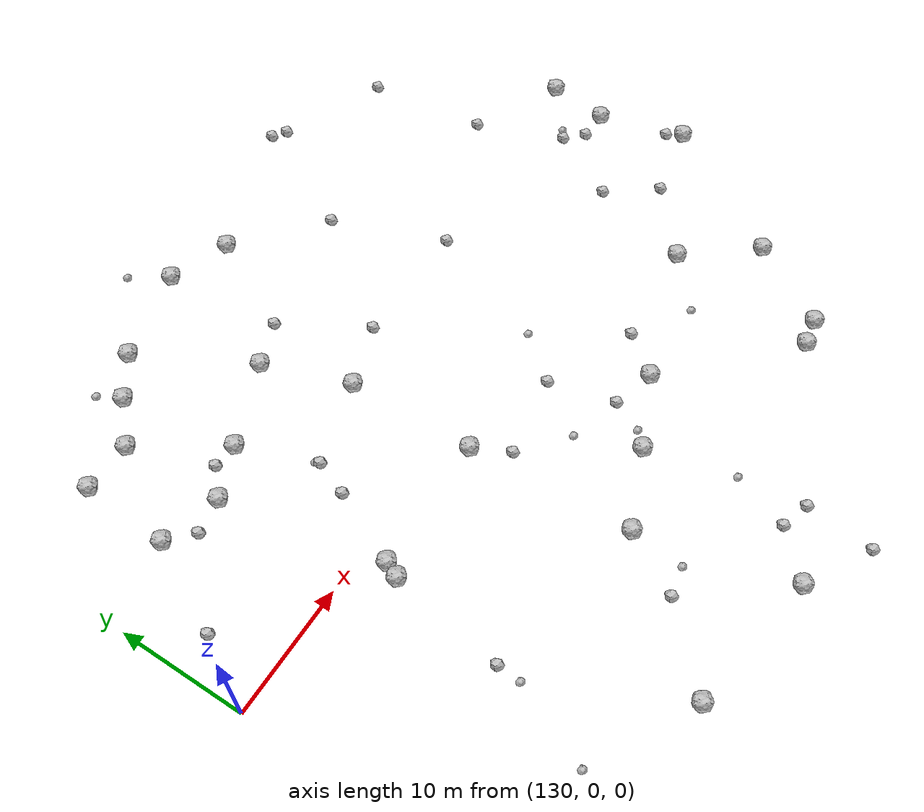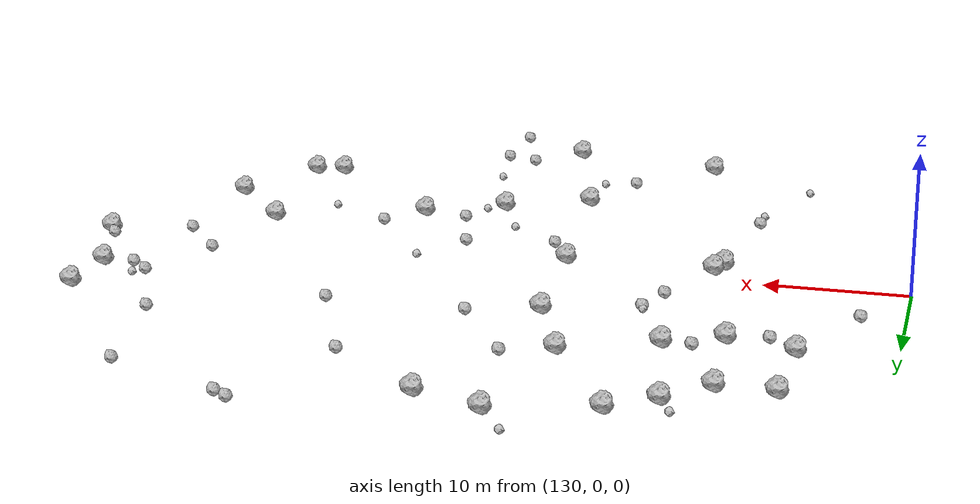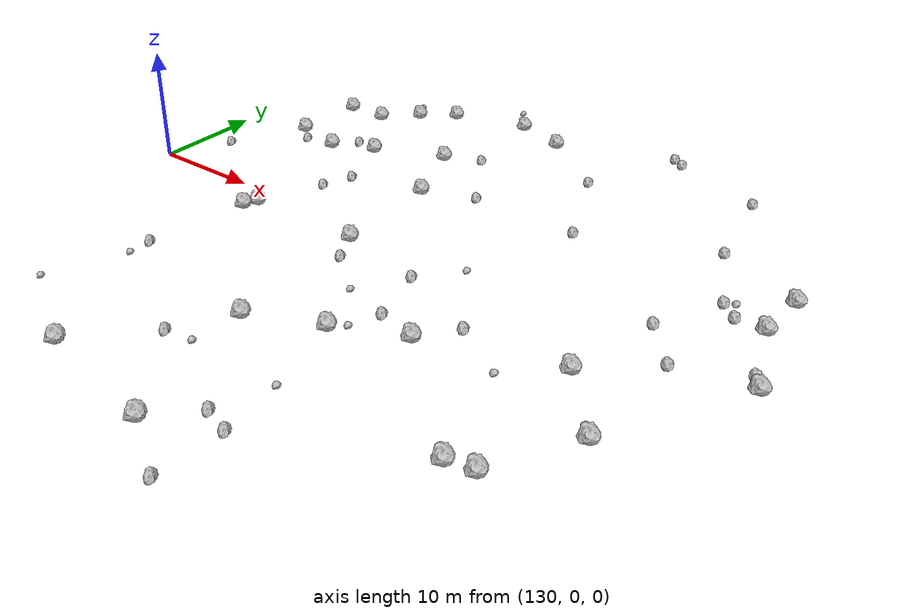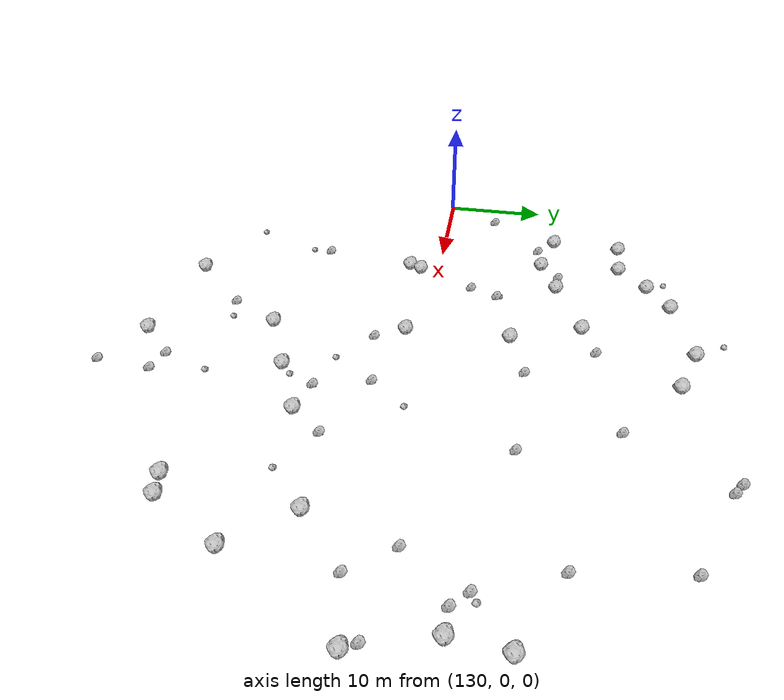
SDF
<sdf version="1.6">
 <world name="default">
  <include><uri>model://sun</uri></include>
  <model name="rock1_4_1">
   <include><uri>model://rock1</uri><pose>143.6754049981179 -1.882518117771184 0.5 0 0 0</pose></include>
  </model>
  <model name="rock1_4_2">
   <include><uri>model://rock1</uri><pose>145.02242839840454 12.282886945889466 0.5 0 0 0</pose></include>
  </model>
  <model name="rock1_4_3">
   <include><uri>model://rock1</uri><pose>154.042132400396 -1.8073502216100863 0.5 0 0 0</pose></include>
  </model>
  <model name="rock1_4_4">
   <include><uri>model://rock1</uri><pose>136.47879868203927 11.906660361726523 0.5 0 0 0</pose></include>
  </model>
  <model name="rock1_4_5">
   <include><uri>model://rock1</uri><pose>146.85079340259395 -24.47166255357587 0.5 0 0 0</pose></include>
  </model>
  <model name="rock1_4_6">
   <include><uri>model://rock1</uri><pose>157.68957502377037 -26.306024122572186 0.5 0 0 0</pose></include>
  </model>
  <model name="rock1_4_7">
   <include><uri>model://rock1</uri><pose>146.70813315365248 23.545975472087946 0.5 0 0 0</pose></include>
  </model>
  <model name="rock1_4_8">
   <include><uri>model://rock1</uri><pose>186.0017646695439 10.527190790420875 0.5 0 0 0</pose></include>
  </model>
  <model name="rock1_4_9">
   <include><uri>model://rock1</uri><pose>180.93438992754415 -11.293263965627737 0.5 0 0 0</pose></include>
  </model>
  <model name="rock1_4_10">
   <include><uri>model://rock1</uri><pose>166.2688967700178 -9.624195562223928 0.5 0 0 0</pose></include>
  </model>
  <model name="rock1_4_11">
   <include><uri>model://rock1</uri><pose>187.44445235684296 -0.7044528984152123 0.5 0 0 0</pose></include>
  </model>
  <model name="rock1_4_12">
   <include><uri>model://rock1</uri><pose>143.11654934130078 -3.079661295705904 0.5 0 0 0</pose></include>
  </model>
  <model name="rock1_4_13">
   <include><uri>model://rock1</uri><pose>153.73279588010843 8.163612081147136 0.5 0 0 0</pose></include>
  </model>
  <model name="rock1_4_14">
   <include><uri>model://rock1</uri><pose>151.37191838649107 14.881855766273922 0.5 0 0 0</pose></include>
  </model>
  <model name="rock1_4_15">
   <include><uri>model://rock1</uri><pose>158.4421651203735 23.576010339803936 0.5 0 0 0</pose></include>
  </model>
  <model name="rock1_4_16">
   <include><uri>model://rock1</uri><pose>177.11046247859304 -17.60597196804366 0.5 0 0 0</pose></include>
  </model>
  <model name="rock1_4_17">
   <include><uri>model://rock1</uri><pose>154.83034707308823 -14.662796624888285 0.5 0 0 0</pose></include>
  </model>
  <model name="rock1_4_18">
   <include><uri>model://rock1</uri><pose>143.6214512505654 21.418487145151623 0.5 0 0 0</pose></include>
  </model>
  <model name="rock1_4_19">
   <include><uri>model://rock1</uri><pose>153.77267606816918 25.27808727416943 0.5 0 0 0</pose></include>
  </model>
  <model name="rock1_4_20">
   <include><uri>model://rock1</uri><pose>140.72354636596543 18.70601274294632 0.5 0 0 0</pose></include>
  </model>
  <model name="rock1_4_21">
   <include><uri>model://rock1</uri><pose>141.1102842182201 10.644501597768333 0.5 0 0 0</pose></include>
  </model>
  <model name="rock1_4_22">
   <include><uri>model://rock1</uri><pose>160.76031837182657 -12.13623236284251 0.5 0 0 0</pose></include>
  </model>
  <model name="rock1_4_23">
   <include><uri>model://rock1</uri><pose>175.02471608841813 -17.986062665740693 0.5 0 0 0</pose></include>
  </model>
  <model name="rock1_4_24">
   <include><uri>model://rock1</uri><pose>185.47690887911537 5.905404146486347 0.5 0 0 0</pose></include>
  </model>
  <model name="rock1_4_25">
   <include><uri>model://rock1</uri><pose>176.75860229521206 -6.079674277284877 0.5 0 0 0</pose></include>
  </model>
  <model name="rock1_4_26">
   <include><uri>model://rock1</uri><pose>136.82082911370424 18.796001805586755 0.5 0 0 0</pose></include>
  </model>
  <model name="rock2_4_0">
   <include><uri>model://rock2</uri><pose>168.1262392122187 9.604466909255443 0.3 0 0 0</pose></include>
  </model>
  <model name="rock2_4_1">
   <include><uri>model://rock2</uri><pose>163.0693947106157 -23.947035877633013 0.3 0 0 0</pose></include>
  </model>
  <model name="rock2_4_2">
   <include><uri>model://rock2</uri><pose>146.16430882698162 3.7283238844381046 0.3 0 0 0</pose></include>
  </model>
  <model name="rock2_4_3">
   <include><uri>model://rock2</uri><pose>155.40743381664956 -4.563303752067171 0.3 0 0 0</pose></include>
  </model>
  <model name="rock2_4_4">
   <include><uri>model://rock2</uri><pose>141.68763439310626 -12.034285030965009 0.3 0 0 0</pose></include>
  </model>
  <model name="rock2_4_5">
   <include><uri>model://rock2</uri><pose>162.57940801176426 -29.17633347031542 0.3 0 0 0</pose></include>
  </model>
  <model name="rock2_4_6">
   <include><uri>model://rock2</uri><pose>152.09439165575805 -19.286592024892755 0.3 0 0 0</pose></include>
  </model>
  <model name="rock2_4_7">
   <include><uri>model://rock2</uri><pose>178.8788940680282 1.8539394370739473 0.3 0 0 0</pose></include>
  </model>
  <model name="rock2_4_8">
   <include><uri>model://rock2</uri><pose>160.85809293559274 -23.237844686588673 0.3 0 0 0</pose></include>
  </model>
  <model name="rock2_4_9">
   <include><uri>model://rock2</uri><pose>142.99313013026318 12.48911389804966 0.3 0 0 0</pose></include>
  </model>
  <model name="rock2_4_10">
   <include><uri>model://rock2</uri><pose>178.02077723140349 23.117428442002314 0.3 0 0 0</pose></include>
  </model>
  <model name="rock2_4_11">
   <include><uri>model://rock2</uri><pose>168.6078926148765 -6.676634207881364 0.3 0 0 0</pose></include>
  </model>
  <model name="rock2_4_12">
   <include><uri>model://rock2</uri><pose>179.20322456170348 13.963693677210962 0.3 0 0 0</pose></include>
  </model>
  <model name="rock2_4_13">
   <include><uri>model://rock2</uri><pose>181.8251051223259 7.316763204750032 0.3 0 0 0</pose></include>
  </model>
  <model name="rock2_4_14">
   <include><uri>model://rock2</uri><pose>147.22816605338255 6.42159448143795 0.3 0 0 0</pose></include>
  </model>
  <model name="rock2_4_15">
   <include><uri>model://rock2</uri><pose>138.29699837402543 10.247226004718321 0.3 0 0 0</pose></include>
  </model>
  <model name="rock2_4_16">
   <include><uri>model://rock2</uri><pose>181.66399323244283 -1.838340383950129 0.3 0 0 0</pose></include>
  </model>
  <model name="rock2_4_17">
   <include><uri>model://rock2</uri><pose>164.8104552431013 18.28064522245098 0.3 0 0 0</pose></include>
  </model>
  <model name="rock2_4_18">
   <include><uri>model://rock2</uri><pose>161.67276685495054 -3.5874511954397406 0.3 0 0 0</pose></include>
  </model>
  <model name="rock2_4_19">
   <include><uri>model://rock2</uri><pose>186.75879496061697 0.5011062918368765 0.3 0 0 0</pose></include>
  </model>
  <model name="rock2_4_20">
   <include><uri>model://rock2</uri><pose>162.93867166290534 -8.700665309473369 0.3 0 0 0</pose></include>
  </model>
  <model name="rock2_4_21">
   <include><uri>model://rock2</uri><pose>169.00644737032178 27.325090755350473 0.3 0 0 0</pose></include>
  </model>
  <model name="rock2_4_22">
   <include><uri>model://rock2</uri><pose>183.16465643074807 5.997940998579551 0.3 0 0 0</pose></include>
  </model>
  <model name="rock2_4_23">
   <include><uri>model://rock2</uri><pose>158.48934040004784 9.80345845000815 0.3 0 0 0</pose></include>
  </model>
  <model name="rock2_4_24">
   <include><uri>model://rock2</uri><pose>154.71724717856804 16.219741993245528 0.3 0 0 0</pose></include>
  </model>
  <model name="rock2_4_25">
   <include><uri>model://rock2</uri><pose>132.97132853413459 5.1578851581018625 0.3 0 0 0</pose></include>
  </model>
  <model name="rock2_4_26">
   <include><uri>model://rock2</uri><pose>170.02081993721868 26.60130494029312 0.3 0 0 0</pose></include>
  </model>
  <model name="rock3_4_0">
   <include><uri>model://rock3</uri><pose>142.62519815967144 23.251334914175473 0.2 0 0 0</pose></include>
  </model>
  <model name="rock3_4_1">
   <include><uri>model://rock3</uri><pose>162.43249253984877 -18.91911547289504 0.2 0 0 0</pose></include>
  </model>
  <model name="rock3_4_2">
   <include><uri>model://rock3</uri><pose>151.86318078490558 28.1075852712013 0.2 0 0 0</pose></include>
  </model>
  <model name="rock3_4_3">
   <include><uri>model://rock3</uri><pose>138.8955352460908 -20.235297346131013 0.2 0 0 0</pose></include>
  </model>
  <model name="rock3_4_4">
   <include><uri>model://rock3</uri><pose>182.54556398507538 7.789553019262989 0.2 0 0 0</pose></include>
  </model>
  <model name="rock3_4_5">
   <include><uri>model://rock3</uri><pose>154.37384005753097 -18.896463813951264 0.2 0 0 0</pose></include>
  </model>
  <model name="rock3_4_6">
   <include><uri>model://rock3</uri><pose>164.39248286370707 -0.24992318332768804 0.2 0 0 0</pose></include>
  </model>
  <model name="rock3_4_7">
   <include><uri>model://rock3</uri><pose>172.9068522569434 -9.438792772170157 0.2 0 0 0</pose></include>
  </model>
  <model name="rock3_4_8">
   <include><uri>model://rock3</uri><pose>141.5592948339793 -13.939973113494961 0.2 0 0 0</pose></include>
  </model>
  <model name="rock3_4_9">
   <include><uri>model://rock3</uri><pose>147.08241419614703 6.722708681644015 0.2 0 0 0</pose></include>
  </model>
  <model name="rock3_4_10">
   <include><uri>model://rock3</uri><pose>158.90145557140437 -7.5292455366159565 0.2 0 0 0</pose></include>
  </model>
  <model name="rock3_4_11">
   <include><uri>model://rock3</uri><pose>161.80748444051446 -11.146212147996849 0.2 0 0 0</pose></include>
  </model>
 </world>
</sdf>
